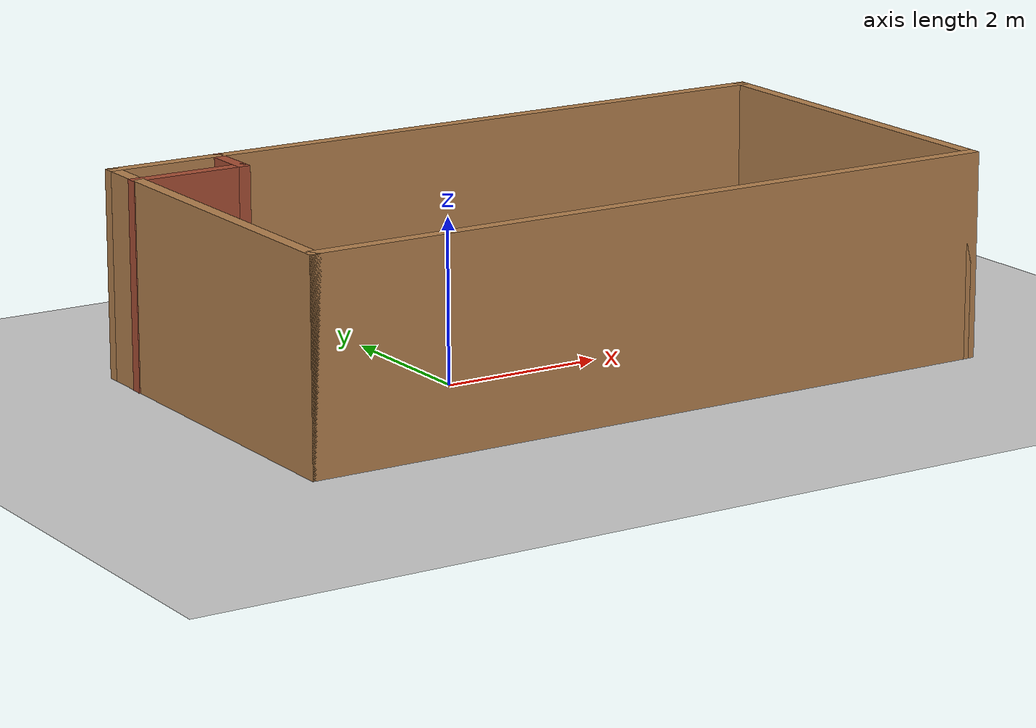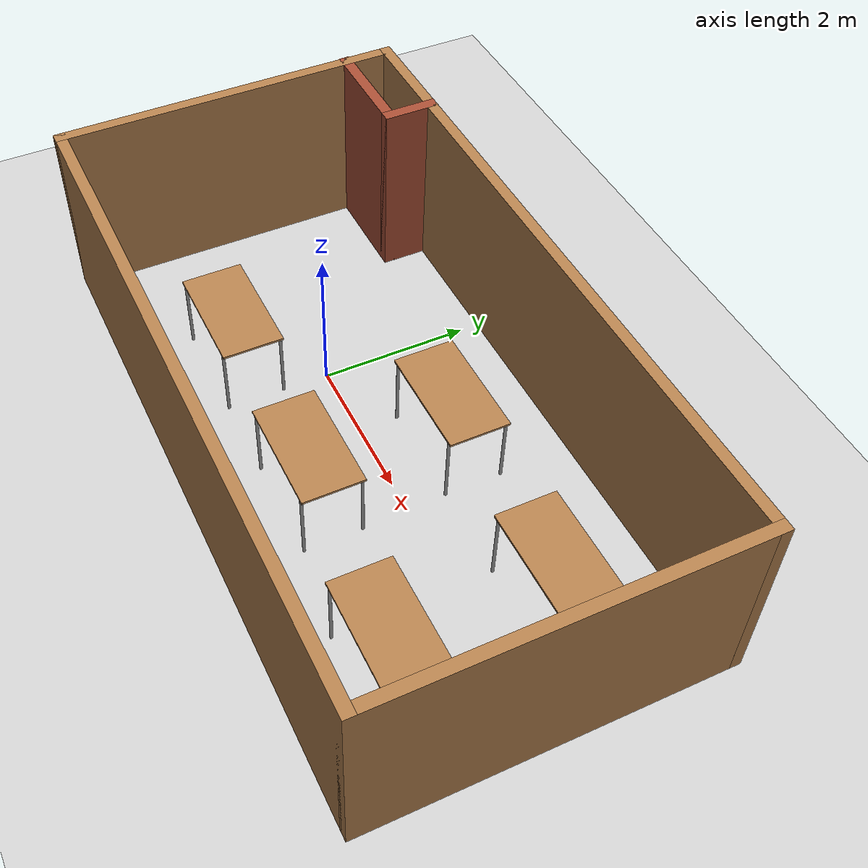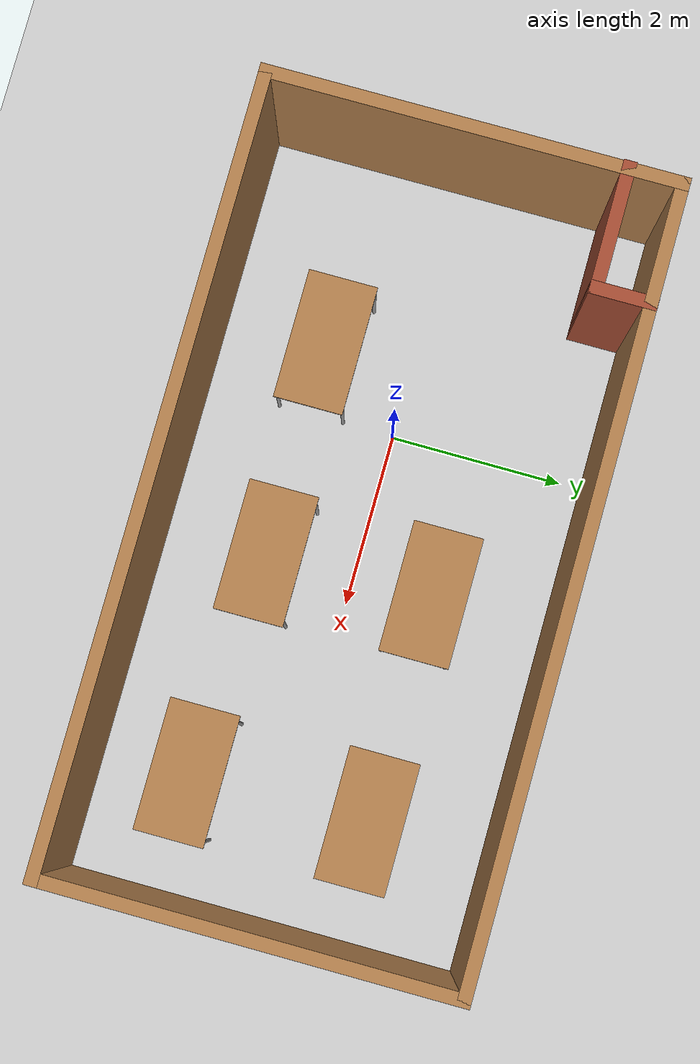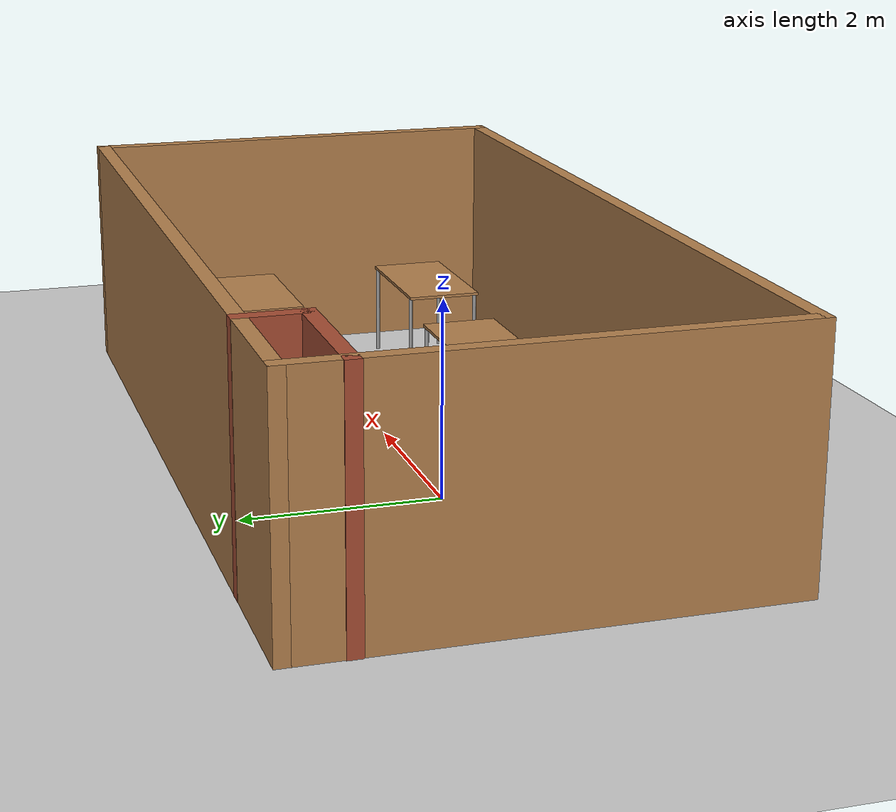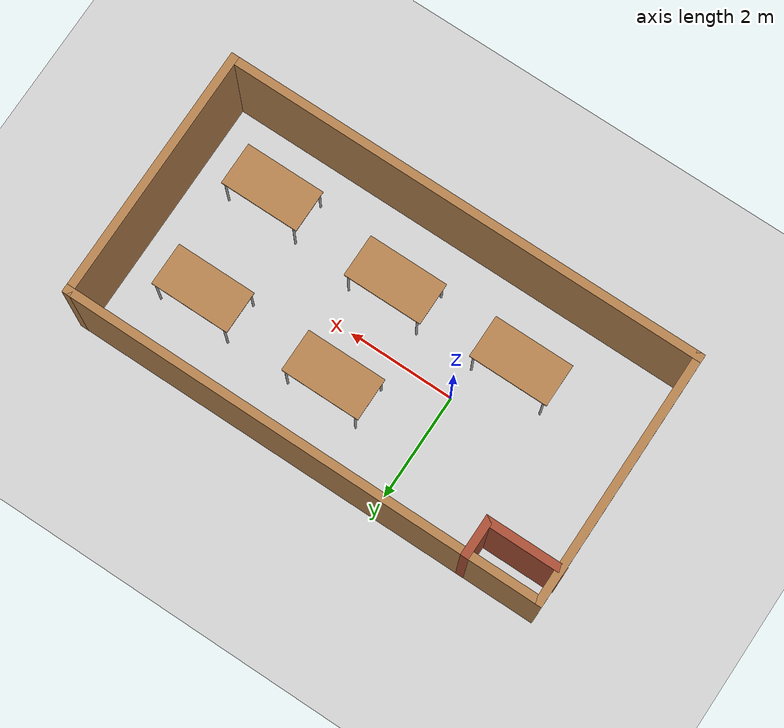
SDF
<sdf version="1.7">
 <world name="default">
  <light name="sun" type="directional">
   <pose>0 0 10 0 -0 0</pose>
   <diffuse>0.8 0.8 0.8 1</diffuse>
   <specular>0.2 0.2 0.2 1</specular>
   <attenuation>
    <range>1000</range>
    <constant>0.9</constant>
    <linear>0.01</linear>
    <quadratic>0.001</quadratic>
   </attenuation>
   <direction>-0.5 0.1 -0.9</direction>
   <spot><inner_angle>0</inner_angle><outer_angle>0</outer_angle><falloff>0</falloff></spot>
  </light>
  <model name="ground_plane">
   <static>1</static>
   <link name="link">
    <collision name="collision">
     <geometry><plane><normal>0 0 1</normal><size>100 100</size></plane></geometry>
     <surface>
      <contact><collide_bitmask>65535</collide_bitmask></contact>
      <friction><ode><mu>100</mu><mu2>50</mu2></ode></friction>
     </surface>
    </collision>
    <visual name="visual">
     <cast_shadows>0</cast_shadows>
     <geometry><plane><normal>0 0 1</normal><size>100 100</size></plane></geometry>
     <material>
      <script><uri>file://media/materials/scripts/gazebo.material</uri><name>Gazebo/Grey</name></script>
     </material>
    </visual>
   </link>
  </model>
  <gravity>0 0 -9.8</gravity>
  <magnetic_field>6e-06 2.3e-05 -4.2e-05</magnetic_field>
  <atmosphere type="adiabatic"/>
  <physics type="ode">
   <max_step_size>0.001</max_step_size>
   <real_time_factor>1</real_time_factor>
   <real_time_update_rate>1000</real_time_update_rate>
  </physics>
  <scene><ambient>0.4 0.4 0.4 1</ambient><background>0.7 0.7 0.7 1</background><shadows>1</shadows></scene>
  <audio><device>default</device></audio>
  <spherical_coordinates>
   <surface_model>EARTH_WGS84</surface_model>
   <latitude_deg>0</latitude_deg>
   <longitude_deg>0</longitude_deg>
   <elevation>0</elevation>
   <heading_deg>0</heading_deg>
  </spherical_coordinates>
  <model name="project">
   <pose>1.34116 0.020283 0 0 -0 0</pose>
   <link name="Wall_3">
    <collision name="Wall_3_Collision">
     <geometry><box><size>4.75 0.15 2.5</size></box></geometry>
     <pose>0 0 1.25 0 -0 0</pose>
    </collision>
    <visual name="Wall_3_Visual">
     <pose>0 0 1.25 0 -0 0</pose>
     <geometry><box><size>4.75 0.15 2.5</size></box></geometry>
     <material>
      <script><uri>file://media/materials/scripts/gazebo.material</uri><name>Gazebo/Wood</name></script>
      <ambient>1 1 1 1</ambient>
     </material>
     <meta><layer>0</layer></meta>
    </visual>
    <pose>-4.41925 -0.001 0 0 -0 -1.5708</pose>
   </link>
   <link name="Wall_4">
    <collision name="Wall_4_Collision">
     <geometry><box><size>9 0.15 2.5</size></box></geometry>
     <pose>0 0 1.25 0 -0 0</pose>
    </collision>
    <visual name="Wall_4_Visual">
     <pose>0 0 1.25 0 -0 0</pose>
     <geometry><box><size>9 0.15 2.5</size></box></geometry>
     <material>
      <script><uri>file://media/materials/scripts/gazebo.material</uri><name>Gazebo/Wood</name></script>
      <ambient>1 1 1 1</ambient>
     </material>
     <meta><layer>0</layer></meta>
    </visual>
    <pose>0.00575 -2.301 0 0 -0 0</pose>
   </link>
   <link name="Wall_5">
    <collision name="Wall_5_Collision">
     <geometry><box><size>4.75 0.15 2.5</size></box></geometry>
     <pose>0 0 1.25 0 -0 0</pose>
    </collision>
    <visual name="Wall_5_Visual">
     <pose>0 0 1.25 0 -0 0</pose>
     <geometry><box><size>4.75 0.15 2.5</size></box></geometry>
     <material>
      <script><uri>file://media/materials/scripts/gazebo.material</uri><name>Gazebo/Wood</name></script>
      <ambient>1 1 1 1</ambient>
     </material>
     <meta><layer>0</layer></meta>
    </visual>
    <pose>4.43075 -0.001 0 0 -0 1.5708</pose>
   </link>
   <link name="Wall_6">
    <collision name="Wall_6_Collision">
     <geometry><box><size>9 0.15 2.5</size></box></geometry>
     <pose>0 0 1.25 0 -0 0</pose>
    </collision>
    <visual name="Wall_6_Visual">
     <pose>0 0 1.25 0 -0 0</pose>
     <geometry><box><size>9 0.15 2.5</size></box></geometry>
     <material>
      <script><uri>file://media/materials/scripts/gazebo.material</uri><name>Gazebo/Wood</name></script>
      <ambient>1 1 1 1</ambient>
     </material>
     <meta><layer>0</layer></meta>
    </visual>
    <pose>0.00575 2.299 0 0 -0 3.14159</pose>
   </link>
   <link name="Wall_8">
    <collision name="Wall_8_Collision">
     <geometry><box><size>1.5 0.15 2.5</size></box></geometry>
     <pose>0 0 1.25 0 -0 0</pose>
    </collision>
    <visual name="Wall_8_Visual">
     <pose>0 0 1.25 0 -0 0</pose>
     <geometry><box><size>1.5 0.15 2.5</size></box></geometry>
     <material>
      <script><uri>file://media/materials/scripts/gazebo.material</uri><name>Gazebo/Bricks</name></script>
      <ambient>1 1 1 1</ambient>
     </material>
     <meta><layer>0</layer></meta>
    </visual>
    <pose>-3.75575 1.701 0 0 -0 0</pose>
   </link>
   <link name="Wall_9">
    <collision name="Wall_9_Collision">
     <geometry><box><size>0.75 0.15 2.5</size></box></geometry>
     <pose>0 0 1.25 0 -0 0</pose>
    </collision>
    <visual name="Wall_9_Visual">
     <pose>0 0 1.25 0 -0 0</pose>
     <geometry><box><size>0.75 0.15 2.5</size></box></geometry>
     <material>
      <script><uri>file://media/materials/scripts/gazebo.material</uri><name>Gazebo/Bricks</name></script>
      <ambient>1 1 1 1</ambient>
     </material>
     <meta><layer>0</layer></meta>
    </visual>
    <pose>-3.08075 2.001 0 0 -0 1.5708</pose>
   </link>
   <static>1</static>
  </model>
  <model name="table">
   <static>1</static>
   <link name="link">
    <collision name="surface">
     <pose>0 0 1 0 -0 0</pose>
     <geometry><box><size>1.5 0.8 0.03</size></box></geometry>
     <surface><friction><ode><mu>0.6</mu><mu2>0.6</mu2></ode></friction></surface>
    </collision>
    <visual name="visual1">
     <pose>0 0 1 0 -0 0</pose>
     <geometry><box><size>1.5 0.8 0.03</size></box></geometry>
     <material>
      <script><uri>file://media/materials/scripts/gazebo.material</uri><name>Gazebo/Wood</name></script>
     </material>
    </visual>
    <collision name="front_left_leg">
     <pose>0.68 0.38 0.5 0 -0 0</pose>
     <geometry><cylinder><radius>0.02</radius><length>1</length></cylinder></geometry>
    </collision>
    <visual name="front_left_leg">
     <pose>0.68 0.38 0.5 0 -0 0</pose>
     <geometry><cylinder><radius>0.02</radius><length>1</length></cylinder></geometry>
     <material>
      <script><uri>file://media/materials/scripts/gazebo.material</uri><name>Gazebo/Grey</name></script>
     </material>
    </visual>
    <collision name="front_right_leg">
     <pose>0.68 -0.38 0.5 0 -0 0</pose>
     <geometry><cylinder><radius>0.02</radius><length>1</length></cylinder></geometry>
    </collision>
    <visual name="front_right_leg">
     <pose>0.68 -0.38 0.5 0 -0 0</pose>
     <geometry><cylinder><radius>0.02</radius><length>1</length></cylinder></geometry>
     <material>
      <script><uri>file://media/materials/scripts/gazebo.material</uri><name>Gazebo/Grey</name></script>
     </material>
    </visual>
    <collision name="back_right_leg">
     <pose>-0.68 -0.38 0.5 0 -0 0</pose>
     <geometry><cylinder><radius>0.02</radius><length>1</length></cylinder></geometry>
    </collision>
    <visual name="back_right_leg">
     <pose>-0.68 -0.38 0.5 0 -0 0</pose>
     <geometry><cylinder><radius>0.02</radius><length>1</length></cylinder></geometry>
     <material>
      <script><uri>file://media/materials/scripts/gazebo.material</uri><name>Gazebo/Grey</name></script>
     </material>
    </visual>
    <collision name="back_left_leg">
     <pose>-0.68 0.38 0.5 0 -0 0</pose>
     <geometry><cylinder><radius>0.02</radius><length>1</length></cylinder></geometry>
    </collision>
    <visual name="back_left_leg">
     <pose>-0.68 0.38 0.5 0 -0 0</pose>
     <geometry><cylinder><radius>0.02</radius><length>1</length></cylinder></geometry>
     <material>
      <script><uri>file://media/materials/scripts/gazebo.material</uri><name>Gazebo/Grey</name></script>
     </material>
    </visual>
   </link>
   <pose>4.32742 -1.15904 0 0 -0 0</pose>
  </model>
  <model name="table_clone">
   <static>1</static>
   <link name="link">
    <collision name="surface">
     <pose>0 0 1 0 -0 0</pose>
     <geometry><box><size>1.5 0.8 0.03</size></box></geometry>
     <surface><friction><ode><mu>0.6</mu><mu2>0.6</mu2></ode></friction></surface>
    </collision>
    <visual name="visual1">
     <pose>0 0 1 0 -0 0</pose>
     <geometry><box><size>1.5 0.8 0.03</size></box></geometry>
     <material>
      <script><uri>file://media/materials/scripts/gazebo.material</uri><name>Gazebo/Wood</name></script>
     </material>
    </visual>
    <collision name="front_left_leg">
     <pose>0.68 0.38 0.5 0 -0 0</pose>
     <geometry><cylinder><radius>0.02</radius><length>1</length></cylinder></geometry>
    </collision>
    <visual name="front_left_leg">
     <pose>0.68 0.38 0.5 0 -0 0</pose>
     <geometry><cylinder><radius>0.02</radius><length>1</length></cylinder></geometry>
     <material>
      <script><uri>file://media/materials/scripts/gazebo.material</uri><name>Gazebo/Grey</name></script>
     </material>
    </visual>
    <collision name="front_right_leg">
     <pose>0.68 -0.38 0.5 0 -0 0</pose>
     <geometry><cylinder><radius>0.02</radius><length>1</length></cylinder></geometry>
    </collision>
    <visual name="front_right_leg">
     <pose>0.68 -0.38 0.5 0 -0 0</pose>
     <geometry><cylinder><radius>0.02</radius><length>1</length></cylinder></geometry>
     <material>
      <script><uri>file://media/materials/scripts/gazebo.material</uri><name>Gazebo/Grey</name></script>
     </material>
    </visual>
    <collision name="back_right_leg">
     <pose>-0.68 -0.38 0.5 0 -0 0</pose>
     <geometry><cylinder><radius>0.02</radius><length>1</length></cylinder></geometry>
    </collision>
    <visual name="back_right_leg">
     <pose>-0.68 -0.38 0.5 0 -0 0</pose>
     <geometry><cylinder><radius>0.02</radius><length>1</length></cylinder></geometry>
     <material>
      <script><uri>file://media/materials/scripts/gazebo.material</uri><name>Gazebo/Grey</name></script>
     </material>
    </visual>
    <collision name="back_left_leg">
     <pose>-0.68 0.38 0.5 0 -0 0</pose>
     <geometry><cylinder><radius>0.02</radius><length>1</length></cylinder></geometry>
    </collision>
    <visual name="back_left_leg">
     <pose>-0.68 0.38 0.5 0 -0 0</pose>
     <geometry><cylinder><radius>0.02</radius><length>1</length></cylinder></geometry>
     <material>
      <script><uri>file://media/materials/scripts/gazebo.material</uri><name>Gazebo/Grey</name></script>
     </material>
    </visual>
   </link>
   <pose>4.31184 0.888532 0 0 -0 0</pose>
  </model>
  <model name="table_clone_0">
   <static>1</static>
   <link name="link">
    <collision name="surface">
     <pose>0 0 1 0 -0 0</pose>
     <geometry><box><size>1.5 0.8 0.03</size></box></geometry>
     <surface><friction><ode><mu>0.6</mu><mu2>0.6</mu2></ode></friction></surface>
    </collision>
    <visual name="visual1">
     <pose>0 0 1 0 -0 0</pose>
     <geometry><box><size>1.5 0.8 0.03</size></box></geometry>
     <material>
      <script><uri>file://media/materials/scripts/gazebo.material</uri><name>Gazebo/Wood</name></script>
     </material>
    </visual>
    <collision name="front_left_leg">
     <pose>0.68 0.38 0.5 0 -0 0</pose>
     <geometry><cylinder><radius>0.02</radius><length>1</length></cylinder></geometry>
    </collision>
    <visual name="front_left_leg">
     <pose>0.68 0.38 0.5 0 -0 0</pose>
     <geometry><cylinder><radius>0.02</radius><length>1</length></cylinder></geometry>
     <material>
      <script><uri>file://media/materials/scripts/gazebo.material</uri><name>Gazebo/Grey</name></script>
     </material>
    </visual>
    <collision name="front_right_leg">
     <pose>0.68 -0.38 0.5 0 -0 0</pose>
     <geometry><cylinder><radius>0.02</radius><length>1</length></cylinder></geometry>
    </collision>
    <visual name="front_right_leg">
     <pose>0.68 -0.38 0.5 0 -0 0</pose>
     <geometry><cylinder><radius>0.02</radius><length>1</length></cylinder></geometry>
     <material>
      <script><uri>file://media/materials/scripts/gazebo.material</uri><name>Gazebo/Grey</name></script>
     </material>
    </visual>
    <collision name="back_right_leg">
     <pose>-0.68 -0.38 0.5 0 -0 0</pose>
     <geometry><cylinder><radius>0.02</radius><length>1</length></cylinder></geometry>
    </collision>
    <visual name="back_right_leg">
     <pose>-0.68 -0.38 0.5 0 -0 0</pose>
     <geometry><cylinder><radius>0.02</radius><length>1</length></cylinder></geometry>
     <material>
      <script><uri>file://media/materials/scripts/gazebo.material</uri><name>Gazebo/Grey</name></script>
     </material>
    </visual>
    <collision name="back_left_leg">
     <pose>-0.68 0.38 0.5 0 -0 0</pose>
     <geometry><cylinder><radius>0.02</radius><length>1</length></cylinder></geometry>
    </collision>
    <visual name="back_left_leg">
     <pose>-0.68 0.38 0.5 0 -0 0</pose>
     <geometry><cylinder><radius>0.02</radius><length>1</length></cylinder></geometry>
     <material>
      <script><uri>file://media/materials/scripts/gazebo.material</uri><name>Gazebo/Grey</name></script>
     </material>
    </visual>
   </link>
   <pose>1.72413 0.90797 0 0 -0 0</pose>
  </model>
  <model name="table_clone_1">
   <static>1</static>
   <link name="link">
    <collision name="surface">
     <pose>0 0 1 0 -0 0</pose>
     <geometry><box><size>1.5 0.8 0.03</size></box></geometry>
     <surface><friction><ode><mu>0.6</mu><mu2>0.6</mu2></ode></friction></surface>
    </collision>
    <visual name="visual1">
     <pose>0 0 1 0 -0 0</pose>
     <geometry><box><size>1.5 0.8 0.03</size></box></geometry>
     <material>
      <script><uri>file://media/materials/scripts/gazebo.material</uri><name>Gazebo/Wood</name></script>
     </material>
    </visual>
    <collision name="front_left_leg">
     <pose>0.68 0.38 0.5 0 -0 0</pose>
     <geometry><cylinder><radius>0.02</radius><length>1</length></cylinder></geometry>
    </collision>
    <visual name="front_left_leg">
     <pose>0.68 0.38 0.5 0 -0 0</pose>
     <geometry><cylinder><radius>0.02</radius><length>1</length></cylinder></geometry>
     <material>
      <script><uri>file://media/materials/scripts/gazebo.material</uri><name>Gazebo/Grey</name></script>
     </material>
    </visual>
    <collision name="front_right_leg">
     <pose>0.68 -0.38 0.5 0 -0 0</pose>
     <geometry><cylinder><radius>0.02</radius><length>1</length></cylinder></geometry>
    </collision>
    <visual name="front_right_leg">
     <pose>0.68 -0.38 0.5 0 -0 0</pose>
     <geometry><cylinder><radius>0.02</radius><length>1</length></cylinder></geometry>
     <material>
      <script><uri>file://media/materials/scripts/gazebo.material</uri><name>Gazebo/Grey</name></script>
     </material>
    </visual>
    <collision name="back_right_leg">
     <pose>-0.68 -0.38 0.5 0 -0 0</pose>
     <geometry><cylinder><radius>0.02</radius><length>1</length></cylinder></geometry>
    </collision>
    <visual name="back_right_leg">
     <pose>-0.68 -0.38 0.5 0 -0 0</pose>
     <geometry><cylinder><radius>0.02</radius><length>1</length></cylinder></geometry>
     <material>
      <script><uri>file://media/materials/scripts/gazebo.material</uri><name>Gazebo/Grey</name></script>
     </material>
    </visual>
    <collision name="back_left_leg">
     <pose>-0.68 0.38 0.5 0 -0 0</pose>
     <geometry><cylinder><radius>0.02</radius><length>1</length></cylinder></geometry>
    </collision>
    <visual name="back_left_leg">
     <pose>-0.68 0.38 0.5 0 -0 0</pose>
     <geometry><cylinder><radius>0.02</radius><length>1</length></cylinder></geometry>
     <material>
      <script><uri>file://media/materials/scripts/gazebo.material</uri><name>Gazebo/Grey</name></script>
     </material>
    </visual>
   </link>
   <pose>1.76344 -0.977984 0 0 -0 0</pose>
  </model>
  <model name="table_clone_2">
   <static>1</static>
   <link name="link">
    <collision name="surface">
     <pose>0 0 1 0 -0 0</pose>
     <geometry><box><size>1.5 0.8 0.03</size></box></geometry>
     <surface><friction><ode><mu>0.6</mu><mu2>0.6</mu2></ode></friction></surface>
    </collision>
    <visual name="visual1">
     <pose>0 0 1 0 -0 0</pose>
     <geometry><box><size>1.5 0.8 0.03</size></box></geometry>
     <material>
      <script><uri>file://media/materials/scripts/gazebo.material</uri><name>Gazebo/Wood</name></script>
     </material>
    </visual>
    <collision name="front_left_leg">
     <pose>0.68 0.38 0.5 0 -0 0</pose>
     <geometry><cylinder><radius>0.02</radius><length>1</length></cylinder></geometry>
    </collision>
    <visual name="front_left_leg">
     <pose>0.68 0.38 0.5 0 -0 0</pose>
     <geometry><cylinder><radius>0.02</radius><length>1</length></cylinder></geometry>
     <material>
      <script><uri>file://media/materials/scripts/gazebo.material</uri><name>Gazebo/Grey</name></script>
     </material>
    </visual>
    <collision name="front_right_leg">
     <pose>0.68 -0.38 0.5 0 -0 0</pose>
     <geometry><cylinder><radius>0.02</radius><length>1</length></cylinder></geometry>
    </collision>
    <visual name="front_right_leg">
     <pose>0.68 -0.38 0.5 0 -0 0</pose>
     <geometry><cylinder><radius>0.02</radius><length>1</length></cylinder></geometry>
     <material>
      <script><uri>file://media/materials/scripts/gazebo.material</uri><name>Gazebo/Grey</name></script>
     </material>
    </visual>
    <collision name="back_right_leg">
     <pose>-0.68 -0.38 0.5 0 -0 0</pose>
     <geometry><cylinder><radius>0.02</radius><length>1</length></cylinder></geometry>
    </collision>
    <visual name="back_right_leg">
     <pose>-0.68 -0.38 0.5 0 -0 0</pose>
     <geometry><cylinder><radius>0.02</radius><length>1</length></cylinder></geometry>
     <material>
      <script><uri>file://media/materials/scripts/gazebo.material</uri><name>Gazebo/Grey</name></script>
     </material>
    </visual>
    <collision name="back_left_leg">
     <pose>-0.68 0.38 0.5 0 -0 0</pose>
     <geometry><cylinder><radius>0.02</radius><length>1</length></cylinder></geometry>
    </collision>
    <visual name="back_left_leg">
     <pose>-0.68 0.38 0.5 0 -0 0</pose>
     <geometry><cylinder><radius>0.02</radius><length>1</length></cylinder></geometry>
     <material>
      <script><uri>file://media/materials/scripts/gazebo.material</uri><name>Gazebo/Grey</name></script>
     </material>
    </visual>
   </link>
   <pose>-0.697209 -0.979708 0 0 -0 0</pose>
  </model>
 </world>
</sdf>
